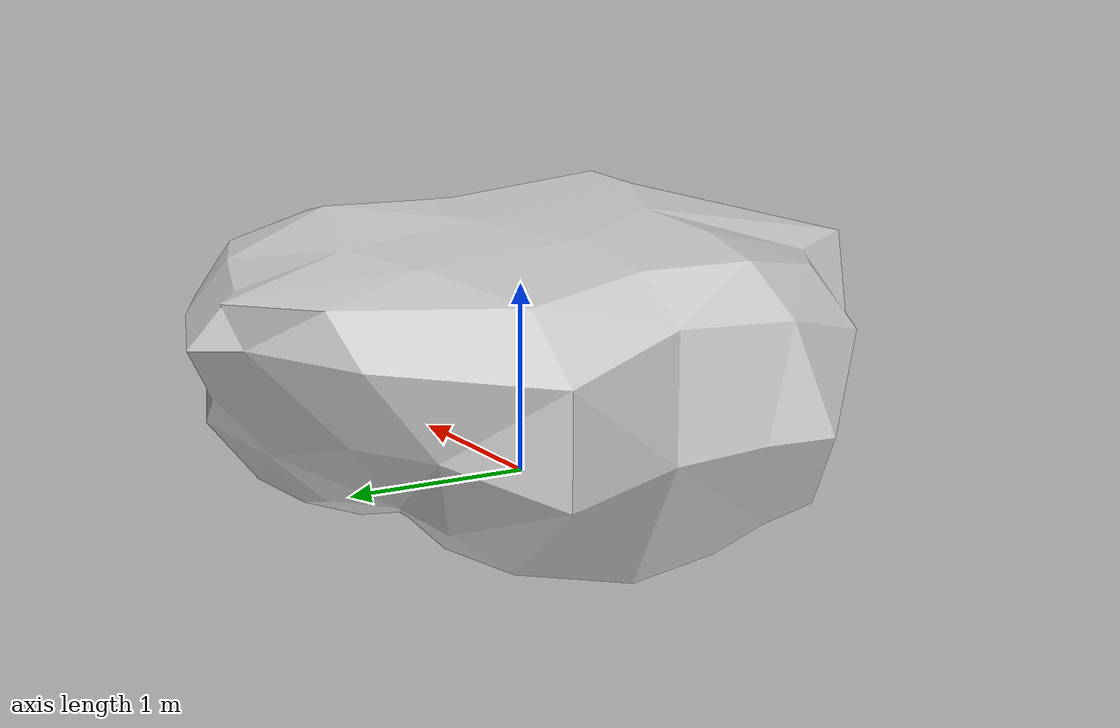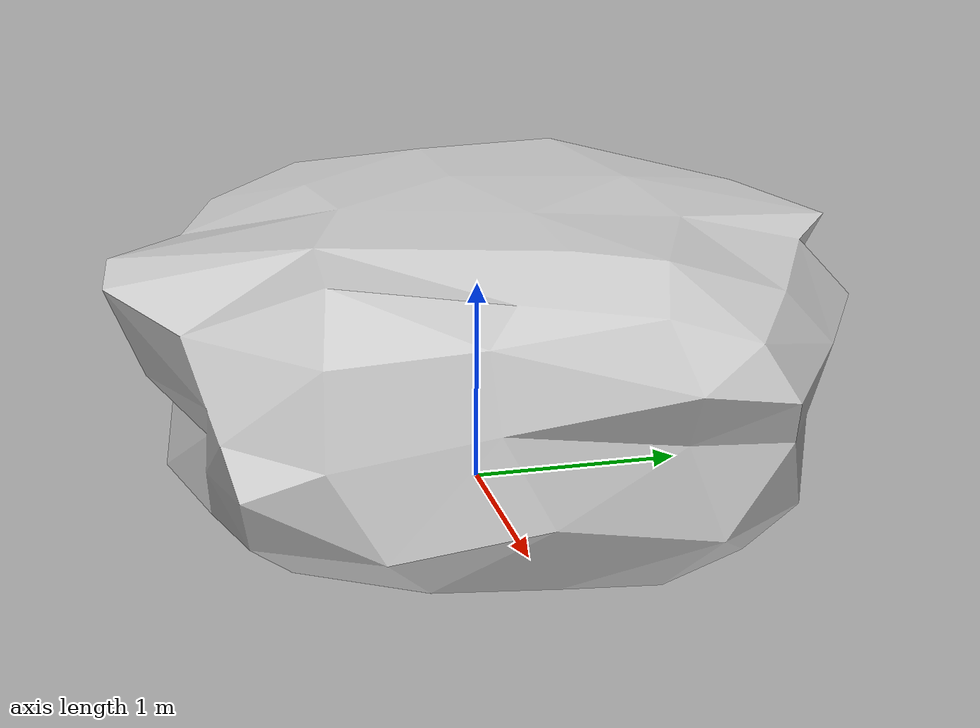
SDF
<?xml version="1.0" ?>
<sdf version="1.6">
  <model name="rock">
    <static>true</static>
    <link name="link">
      <collision name="collision">
        <geometry>
          <mesh>
            <uri>model://rock/meshes/Rock1.dae</uri>
          </mesh>
        </geometry>
      </collision>
      <visual name="rock">
        <geometry>
          <mesh>
            <uri>model://rock/meshes/Rock1.dae</uri>
          </mesh>
        </geometry>
        <material>
          <script>
            <uri>model://rock/materials/scripts/</uri>
            <uri>model://rock/materials/textures/</uri>
						<name>Rock</name>
          </script>
        </material>
      </visual>
    </link>
  </model>
</sdf>
